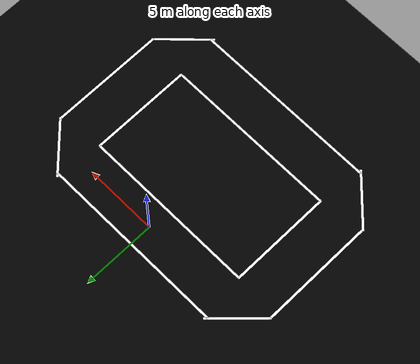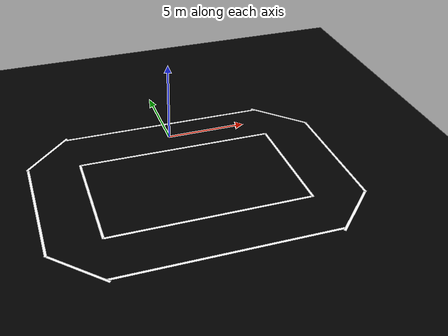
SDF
<sdf version="1.6">
 <world name="kohms_world">
  <physics name="1ms" type="ignored">
   <max_step_size>0.001</max_step_size>
   <real_time_factor>1.0</real_time_factor>
  </physics>
  <plugin filename="ignition-gazebo-navsat-system" name="ignition::gazebo::systems::NavSat"/>
  <plugin filename="ignition-gazebo-physics-system" name="ignition::gazebo::systems::Physics"/>
  <plugin filename="ignition-gazebo-sensors-system" name="ignition::gazebo::systems::Sensors">
   <render_engine>ogre2</render_engine>
  </plugin>
  <plugin filename="ignition-gazebo-user-commands-system" name="ignition::gazebo::systems::UserCommands"/>
  <plugin filename="ignition-gazebo-scene-broadcaster-system" name="ignition::gazebo::systems::SceneBroadcaster"/>
  <plugin filename="ignition-gazebo-contact-system" name="ignition::gazebo::systems::Contact"/>
  <plugin filename="libignition-gazebo-imu-system.so" name="ignition::gazebo::systems::Imu"/>
  <spherical_coordinates>
   <surface_model>EARTH_WGS84</surface_model>
   <world_frame_orientation>ENU</world_frame_orientation>
   <latitude_deg>42.31900798506178</latitude_deg>
   <longitude_deg>-83.23283357729119</longitude_deg>
   <elevation>0</elevation>
   <heading_deg>0</heading_deg>
  </spherical_coordinates>
  <light type="directional" name="sun">
   <pose>0 0 10 0 0 0</pose>
   <diffuse>0.8 0.8 0.8 1</diffuse>
   <specular>0.2 0.2 0.2 1</specular>
   <attenuation>
    <range>1000</range>
    <constant>0.9</constant>
    <linear>0.01</linear>
    <quadratic>0.001</quadratic>
   </attenuation>
   <direction>-0.5 0.1 -0.9</direction>
  </light>
  <model name="ground_plane">
   <static>true</static>
   <link name="link">
    <collision name="collision">
     <geometry><plane><normal>0 0 1</normal><size>100 100</size></plane></geometry>
    </collision>
    <visual name="visual">
     <geometry><plane><normal>0 0 1</normal><size>100 100</size></plane></geometry>
     <material>
      <ambient>0.8 0.8 0.8 1</ambient>
      <diffuse>0 0 0 1</diffuse>
      <specular>0.8 0.8 0.8 1</specular>
     </material>
    </visual>
   </link>
  </model>
  <model name="white_line_l1">
   <static>true</static>
   <link name="link_ground">
    <pose>0.0 1.524 0.01 0 0 1.5708</pose>
    <visual name="visual_ground">
     <cast_shadows>false</cast_shadows>
     <geometry><plane><normal>0 0 1</normal><size>0.1524 13</size></plane></geometry>
     <material>
      <ambient>1.0 1.0 1.0 1.0</ambient>
      <diffuse>1.0 1.0 1.0 1.0</diffuse>
      <specular>1.0 1.0 1.0 1.0</specular>
      <emissive>1.0 1.0 1.0 1.0</emissive>
     </material>
    </visual>
   </link>
  </model>
  <model name="white_line_r1">
   <static>true</static>
   <link name="link_ground">
    <pose>0.0 -1.524 0.01 0 0 1.5708</pose>
    <visual name="visual_ground">
     <cast_shadows>false</cast_shadows>
     <geometry><plane><normal>0 0 1</normal><size>0.1524 12</size></plane></geometry>
     <material>
      <ambient>1.0 1.0 1.0 1.0</ambient>
      <diffuse>1.0 1.0 1.0 1.0</diffuse>
      <specular>1.0 1.0 1.0 1.0</specular>
      <emissive>1.0 1.0 1.0 1.0</emissive>
     </material>
    </visual>
   </link>
  </model>
  <model name="white_line_r2">
   <static>true</static>
   <link name="link_ground">
    <pose>0.0 -11.524 0.01 0 0 1.5708</pose>
    <visual name="visual_ground">
     <cast_shadows>false</cast_shadows>
     <geometry><plane><normal>0 0 1</normal><size>0.1524 13</size></plane></geometry>
     <material>
      <ambient>1.0 1.0 1.0 1.0</ambient>
      <diffuse>1.0 1.0 1.0 1.0</diffuse>
      <specular>1.0 1.0 1.0 1.0</specular>
      <emissive>1.0 1.0 1.0 1.0</emissive>
     </material>
    </visual>
   </link>
  </model>
  <model name="white_line_l2">
   <static>true</static>
   <link name="link_ground">
    <pose>0.0 -8.476 0.01 0 0 1.5708</pose>
    <visual name="visual_ground">
     <cast_shadows>false</cast_shadows>
     <geometry><plane><normal>0 0 1</normal><size>0.1524 12</size></plane></geometry>
     <material>
      <ambient>1.0 1.0 1.0 1.0</ambient>
      <diffuse>1.0 1.0 1.0 1.0</diffuse>
      <specular>1.0 1.0 1.0 1.0</specular>
      <emissive>1.0 1.0 1.0 1.0</emissive>
     </material>
    </visual>
   </link>
  </model>
  <model name="white_line_t1">
   <static>true</static>
   <link name="link_ground">
    <pose>6 -5 0.01 0 0 0</pose>
    <visual name="visual_ground">
     <cast_shadows>false</cast_shadows>
     <geometry><plane><normal>0 0 1</normal><size>0.1524 7.048</size></plane></geometry>
     <material>
      <ambient>1.0 1.0 1.0 1.0</ambient>
      <diffuse>1.0 1.0 1.0 1.0</diffuse>
      <specular>1.0 1.0 1.0 1.0</specular>
      <emissive>1.0 1.0 1.0 1.0</emissive>
     </material>
    </visual>
   </link>
  </model>
  <model name="white_line_t2">
   <static>true</static>
   <link name="link_ground">
    <pose>9.048 -5 0.01 0 0 0</pose>
    <visual name="visual_ground">
     <cast_shadows>false</cast_shadows>
     <geometry><plane><normal>0 0 1</normal><size>0.1524 8</size></plane></geometry>
     <material>
      <ambient>1.0 1.0 1.0 1.0</ambient>
      <diffuse>1.0 1.0 1.0 1.0</diffuse>
      <specular>1.0 1.0 1.0 1.0</specular>
      <emissive>1.0 1.0 1.0 1.0</emissive>
     </material>
    </visual>
   </link>
  </model>
  <model name="white_line_t3">
   <static>true</static>
   <link name="link_ground">
    <pose>-6 -5 0.01 0 0 0</pose>
    <visual name="visual_ground">
     <cast_shadows>false</cast_shadows>
     <geometry><plane><normal>0 0 1</normal><size>0.1524 7.048</size></plane></geometry>
     <material>
      <ambient>1.0 1.0 1.0 1.0</ambient>
      <diffuse>1.0 1.0 1.0 1.0</diffuse>
      <specular>1.0 1.0 1.0 1.0</specular>
      <emissive>1.0 1.0 1.0 1.0</emissive>
     </material>
    </visual>
   </link>
  </model>
  <model name="white_line_t4">
   <static>true</static>
   <link name="link_ground">
    <pose>-9.048 -5 0.01 0 0 0</pose>
    <visual name="visual_ground">
     <cast_shadows>false</cast_shadows>
     <geometry><plane><normal>0 0 1</normal><size>0.1524 8</size></plane></geometry>
     <material>
      <ambient>1.0 1.0 1.0 1.0</ambient>
      <diffuse>1.0 1.0 1.0 1.0</diffuse>
      <specular>1.0 1.0 1.0 1.0</specular>
      <emissive>1.0 1.0 1.0 1.0</emissive>
     </material>
    </visual>
   </link>
  </model>
  <model name="white_line_d1">
   <static>true</static>
   <link name="link_ground">
    <pose>7.7 0.3 0.01 0 0 0.785398</pose>
    <visual name="visual_ground">
     <cast_shadows>false</cast_shadows>
     <geometry><plane><normal>0 0 1</normal><size>0.1524 4</size></plane></geometry>
     <material>
      <ambient>1.0 1.0 1.0 1.0</ambient>
      <diffuse>1.0 1.0 1.0 1.0</diffuse>
      <specular>1.0 1.0 1.0 1.0</specular>
      <emissive>1.0 1.0 1.0 1.0</emissive>
     </material>
    </visual>
   </link>
  </model>
  <model name="white_line_d2">
   <static>true</static>
   <link name="link_ground">
    <pose>7.7 -10.3 0.01 0 0 -0.785398</pose>
    <visual name="visual_ground">
     <cast_shadows>false</cast_shadows>
     <geometry><plane><normal>0 0 1</normal><size>0.1524 4</size></plane></geometry>
     <material>
      <ambient>1.0 1.0 1.0 1.0</ambient>
      <diffuse>1.0 1.0 1.0 1.0</diffuse>
      <specular>1.0 1.0 1.0 1.0</specular>
      <emissive>1.0 1.0 1.0 1.0</emissive>
     </material>
    </visual>
   </link>
  </model>
  <model name="white_line_d3">
   <static>true</static>
   <link name="link_ground">
    <pose>-7.7 0.3 0.01 0 0 -0.785398</pose>
    <visual name="visual_ground">
     <cast_shadows>false</cast_shadows>
     <geometry><plane><normal>0 0 1</normal><size>0.1524 4</size></plane></geometry>
     <material>
      <ambient>1.0 1.0 1.0 1.0</ambient>
      <diffuse>1.0 1.0 1.0 1.0</diffuse>
      <specular>1.0 1.0 1.0 1.0</specular>
      <emissive>1.0 1.0 1.0 1.0</emissive>
     </material>
    </visual>
   </link>
  </model>
  <model name="white_line_d4">
   <static>true</static>
   <link name="link_ground">
    <pose>-7.7 -10.3 0.01 0 0 0.785398</pose>
    <visual name="visual_ground">
     <cast_shadows>false</cast_shadows>
     <geometry><plane><normal>0 0 1</normal><size>0.1524 4</size></plane></geometry>
     <material>
      <ambient>1.0 1.0 1.0 1.0</ambient>
      <diffuse>1.0 1.0 1.0 1.0</diffuse>
      <specular>1.0 1.0 1.0 1.0</specular>
      <emissive>1.0 1.0 1.0 1.0</emissive>
     </material>
    </visual>
   </link>
  </model>
 </world>
</sdf>
